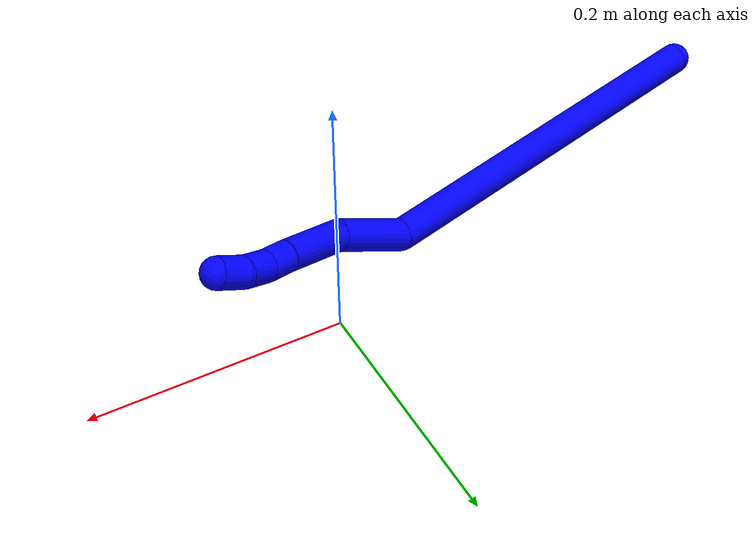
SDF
<sdf version="1.7">
 <world name="default">
  <plugin name="TubeGeneratorPlugin" filename="libtube_generator_plugin.so"/>
  <model name="photoneo_s_sensor">
   <static>1</static>
   <pose>0 0 2 1.57079 1.57079 3.14159</pose>
   <link name="link">
    <inertial><mass>0.1</mass></inertial>
    <sensor name="sensor" type="depth">
     <update_rate>30</update_rate>
     <camera>
      <horizontal_fov>1.22</horizontal_fov>
      <image><width>1920</width><height>1200</height><format>B8G8R8</format></image>
      <clip><near>0.1</near><far>4</far></clip>
      <depth_camera><output>points</output></depth_camera>
     </camera>
     <plugin name="camera_plugin" filename="libgazebo_ros_depth_camera.so">
      <baseline>0.2</baseline>
      <alwaysOn>1</alwaysOn>
      <updateRate>0.0</updateRate>
      <cameraName>camera_ir</cameraName>
      <imageTopicName>/camera/color/image_raw</imageTopicName>
      <cameraInfoTopicName>/camera/color/camera_info</cameraInfoTopicName>
      <depthImageTopicName>/camera/depth/image_raw</depthImageTopicName>
      <depthImageCameraInfoTopicName>/camera/depth/camera_info</depthImageCameraInfoTopicName>
      <pointCloudTopicName>/camera/depth/points</pointCloudTopicName>
      <frameName>fr_optical</frameName>
      <pointCloudCutoff>0.1</pointCloudCutoff>
      <pointCloudCutoffMax>2.0</pointCloudCutoffMax>
      <distortionK1>0</distortionK1>
      <distortionK2>0</distortionK2>
      <distortionK3>0</distortionK3>
      <distortionT1>0</distortionT1>
      <distortionT2>0</distortionT2>
      <CxPrime>0</CxPrime>
      <Cx>0</Cx>
      <Cy>0</Cy>
      <focalLength>0</focalLength>
      <hackBaseline>0</hackBaseline>
     </plugin>
    </sensor>
   </link>
  </model>
  <gravity>0 0 -9.8</gravity>
  <magnetic_field>6e-06 2.3e-05 -4.2e-05</magnetic_field>
  <atmosphere type="adiabatic"/>
  <physics name="default_physics" default="0" type="ode">
   <max_step_size>0.003</max_step_size>
   <real_time_factor>1</real_time_factor>
   <real_time_update_rate>1000</real_time_update_rate>
   <max_contacts>10000</max_contacts>
   <ode>
    <solver>
     <type>quick</type>
     <iters>100</iters>
     <sor>1.3</sor>
     <use_dynamic_moi_rescaling>0</use_dynamic_moi_rescaling>
    </solver>
    <constraints>
     <contact_max_correcting_vel>0</contact_max_correcting_vel>
     <contact_surface_layer>0.001</contact_surface_layer>
     <cfm>0</cfm>
     <erp>0.2</erp>
    </constraints>
   </ode>
  </physics>
  <scene><ambient>0.4 0.4 0.4 1</ambient><background>0.7 0.7 0.7 1</background><shadows>0</shadows></scene>
  <audio><device>default</device></audio>
  <spherical_coordinates>
   <surface_model>EARTH_WGS84</surface_model>
   <latitude_deg>0</latitude_deg>
   <longitude_deg>0</longitude_deg>
   <elevation>0</elevation>
   <heading_deg>0</heading_deg>
  </spherical_coordinates>
  <model name="bin">
   <static>1</static>
   <link name="bottom">
    <collision name="collision-bottom">
     <pose>0 0 -0.01 0 -0 0</pose>
     <geometry><box><size>0.8 0.6 0.02</size></box></geometry>
     <surface>
      <friction><ode><mu>100</mu><mu2>100</mu2></ode></friction>
      <contact><collide_bitmask>65535</collide_bitmask></contact>
     </surface>
    </collision>
   </link>
   <link name="west_wall">
    <collision name="collision-west_wall">
     <pose>-0.41 0 0.1 0 -0 0</pose>
     <geometry><box><size>0.02 0.6 0.2</size></box></geometry>
     <surface>
      <friction><ode><mu>100</mu><mu2>100</mu2></ode></friction>
      <contact><collide_bitmask>65535</collide_bitmask></contact>
     </surface>
    </collision>
   </link>
   <link name="east_wall">
    <collision name="collision-east_wall">
     <pose>0.41 0 0.1 0 -0 0</pose>
     <geometry><box><size>0.02 0.6 0.2</size></box></geometry>
     <surface>
      <friction><ode><mu>100</mu><mu2>100</mu2></ode></friction>
      <contact><collide_bitmask>65535</collide_bitmask></contact>
     </surface>
    </collision>
   </link>
   <link name="south_wall">
    <collision name="collision-south_wall">
     <pose>0 -0.31 0.1 0 -0 0</pose>
     <geometry><box><size>0.8 0.02 0.2</size></box></geometry>
     <surface>
      <friction><ode><mu>100</mu><mu2>100</mu2></ode></friction>
      <contact><collide_bitmask>65535</collide_bitmask></contact>
     </surface>
    </collision>
   </link>
   <link name="north_wall">
    <collision name="collision-north_wall">
     <pose>0 0.31 0.1 0 -0 0</pose>
     <geometry><box><size>0.8 0.02 0.2</size></box></geometry>
     <surface>
      <friction><ode><mu>100</mu><mu2>100</mu2></ode></friction>
      <contact><collide_bitmask>65535</collide_bitmask></contact>
     </surface>
    </collision>
   </link>
  </model>
  <model name="1">
   <static>0</static>
   <link name="1">
    <collision name="collision-cylinder-e_1_1_4">
     <pose>0.101848 0.030794 -0.119603 -2.8896 0.689594 -2.46344</pose>
     <geometry><cylinder><radius>0.0125</radius><length>0.320164</length></cylinder></geometry>
     <surface>
      <friction><ode><mu>1.16</mu><mu2>1.16</mu2><slip1>0</slip1><slip2>0</slip2></ode></friction>
      <contact><ode><kp>1e+06</kp><kd>1</kd><max_vel>0</max_vel><min_depth>0.001</min_depth></ode></contact>
     </surface>
    </collision>
    <visual name="visual-cylinder-e_1_1_4">
     <pose>0.101848 0.030794 -0.119603 -2.8896 0.689594 -2.46344</pose>
     <geometry><cylinder><radius>0.0125</radius><length>0.320164</length></cylinder></geometry>
     <material><ambient>0 0 1 1</ambient></material>
    </visual>
    <collision name="collision-cylinder-e_2_4_5">
     <pose>0.231053 0.062966 -0.250766 -3.02294 1.16847 -2.96243</pose>
     <geometry><cylinder><radius>0.0125</radius><length>0.059462</length></cylinder></geometry>
     <surface>
      <friction><ode><mu>1.16</mu><mu2>1.16</mu2><slip1>0</slip1><slip2>0</slip2></ode></friction>
      <contact><ode><kp>1e+06</kp><kd>1</kd><max_vel>0</max_vel><min_depth>0.001</min_depth></ode></contact>
     </surface>
    </collision>
    <visual name="visual-cylinder-e_2_4_5">
     <pose>0.231053 0.062966 -0.250766 -3.02294 1.16847 -2.96243</pose>
     <geometry><cylinder><radius>0.0125</radius><length>0.059462</length></cylinder></geometry>
     <material><ambient>0 0 1 1</ambient></material>
    </visual>
    <collision name="collision-cylinder-e_3_5_6">
     <pose>0.279858 0.071546 -0.277236 -2.69162 0.913362 -2.26975</pose>
     <geometry><cylinder><radius>0.0125</radius><length>0.054192</length></cylinder></geometry>
     <surface>
      <friction><ode><mu>1.16</mu><mu2>1.16</mu2><slip1>0</slip1><slip2>0</slip2></ode></friction>
      <contact><ode><kp>1e+06</kp><kd>1</kd><max_vel>0</max_vel><min_depth>0.001</min_depth></ode></contact>
     </surface>
    </collision>
    <visual name="visual-cylinder-e_3_5_6">
     <pose>0.279858 0.071546 -0.277236 -2.69162 0.913362 -2.26975</pose>
     <geometry><cylinder><radius>0.0125</radius><length>0.054192</length></cylinder></geometry>
     <material><ambient>0 0 1 1</ambient></material>
    </visual>
    <collision name="collision-cylinder-e_4_6_7">
     <pose>0.309002 0.081303 -0.298485 -2.75847 0.844564 -2.32663</pose>
     <geometry><cylinder><radius>0.0125</radius><length>0.020585</length></cylinder></geometry>
     <surface>
      <friction><ode><mu>1.16</mu><mu2>1.16</mu2><slip1>0</slip1><slip2>0</slip2></ode></friction>
      <contact><ode><kp>1e+06</kp><kd>1</kd><max_vel>0</max_vel><min_depth>0.001</min_depth></ode></contact>
     </surface>
    </collision>
    <visual name="visual-cylinder-e_4_6_7">
     <pose>0.309002 0.081303 -0.298485 -2.75847 0.844564 -2.32663</pose>
     <geometry><cylinder><radius>0.0125</radius><length>0.020585</length></cylinder></geometry>
     <material><ambient>0 0 1 1</ambient></material>
    </visual>
    <collision name="collision-cylinder-e_5_7_8">
     <pose>0.326239 0.08706 -0.309872 -2.57629 1.01113 -2.17523</pose>
     <geometry><cylinder><radius>0.0125</radius><length>0.022518</length></cylinder></geometry>
     <surface>
      <friction><ode><mu>1.16</mu><mu2>1.16</mu2><slip1>0</slip1><slip2>0</slip2></ode></friction>
      <contact><ode><kp>1e+06</kp><kd>1</kd><max_vel>0</max_vel><min_depth>0.001</min_depth></ode></contact>
     </surface>
    </collision>
    <visual name="visual-cylinder-e_5_7_8">
     <pose>0.326239 0.08706 -0.309872 -2.57629 1.01113 -2.17523</pose>
     <geometry><cylinder><radius>0.0125</radius><length>0.022518</length></cylinder></geometry>
     <material><ambient>0 0 1 1</ambient></material>
    </visual>
    <collision name="collision-cylinder-e_6_8_2">
     <pose>0.346338 0.09079 -0.319545 -3.02792 1.15545 -2.96747</pose>
     <geometry><cylinder><radius>0.0125</radius><length>0.023079</length></cylinder></geometry>
     <surface>
      <friction><ode><mu>1.16</mu><mu2>1.16</mu2><slip1>0</slip1><slip2>0</slip2></ode></friction>
      <contact><ode><kp>1e+06</kp><kd>1</kd><max_vel>0</max_vel><min_depth>0.001</min_depth></ode></contact>
     </surface>
    </collision>
    <visual name="visual-cylinder-e_6_8_2">
     <pose>0.346338 0.09079 -0.319545 -3.02792 1.15545 -2.96747</pose>
     <geometry><cylinder><radius>0.0125</radius><length>0.023079</length></cylinder></geometry>
     <material><ambient>0 0 1 1</ambient></material>
    </visual>
    <collision name="collision-sphere-2">
     <pose>0.356897 0.091318 -0.324172 0 -0 0</pose>
     <geometry><sphere><radius>0.0125</radius></sphere></geometry>
     <surface>
      <friction><ode><mu>1.16</mu><mu2>1.16</mu2><slip1>0</slip1><slip2>0</slip2></ode></friction>
      <contact><ode><kp>1e+06</kp><kd>1</kd><max_vel>0</max_vel><min_depth>0.001</min_depth></ode></contact>
     </surface>
    </collision>
    <visual name="visual-sphere-2">
     <pose>0.356897 0.091318 -0.324172 0 -0 0</pose>
     <geometry><sphere><radius>0.0125</radius></sphere></geometry>
     <material><ambient>0 0 1 1</ambient></material>
    </visual>
    <collision name="collision-sphere-4">
     <pose>0.203696 0.061588 -0.239207 0 -0 0</pose>
     <geometry><sphere><radius>0.0125</radius></sphere></geometry>
     <surface>
      <friction><ode><mu>1.16</mu><mu2>1.16</mu2><slip1>0</slip1><slip2>0</slip2></ode></friction>
      <contact><ode><kp>1e+06</kp><kd>1</kd><max_vel>0</max_vel><min_depth>0.001</min_depth></ode></contact>
     </surface>
    </collision>
    <visual name="visual-sphere-4">
     <pose>0.203696 0.061588 -0.239207 0 -0 0</pose>
     <geometry><sphere><radius>0.0125</radius></sphere></geometry>
     <material><ambient>0 0 1 1</ambient></material>
    </visual>
    <collision name="collision-sphere-1">
     <geometry><sphere><radius>0.0125</radius></sphere></geometry>
     <surface>
      <friction><ode><mu>1.16</mu><mu2>1.16</mu2><slip1>0</slip1><slip2>0</slip2></ode></friction>
      <contact><ode><kp>1e+06</kp><kd>1</kd><max_vel>0</max_vel><min_depth>0.001</min_depth></ode></contact>
     </surface>
    </collision>
    <visual name="visual-sphere-1">
     <geometry><sphere><radius>0.0125</radius></sphere></geometry>
     <material><ambient>0 0 1 1</ambient></material>
    </visual>
    <collision name="collision-sphere-8">
     <pose>0.33578 0.090262 -0.314919 0 -0 0</pose>
     <geometry><sphere><radius>0.0125</radius></sphere></geometry>
     <surface>
      <friction><ode><mu>1.16</mu><mu2>1.16</mu2><slip1>0</slip1><slip2>0</slip2></ode></friction>
      <contact><ode><kp>1e+06</kp><kd>1</kd><max_vel>0</max_vel><min_depth>0.001</min_depth></ode></contact>
     </surface>
    </collision>
    <visual name="visual-sphere-8">
     <pose>0.33578 0.090262 -0.314919 0 -0 0</pose>
     <geometry><sphere><radius>0.0125</radius></sphere></geometry>
     <material><ambient>0 0 1 1</ambient></material>
    </visual>
    <collision name="collision-sphere-5">
     <pose>0.25841 0.064344 -0.262326 0 -0 0</pose>
     <geometry><sphere><radius>0.0125</radius></sphere></geometry>
     <surface>
      <friction><ode><mu>1.16</mu><mu2>1.16</mu2><slip1>0</slip1><slip2>0</slip2></ode></friction>
      <contact><ode><kp>1e+06</kp><kd>1</kd><max_vel>0</max_vel><min_depth>0.001</min_depth></ode></contact>
     </surface>
    </collision>
    <visual name="visual-sphere-5">
     <pose>0.25841 0.064344 -0.262326 0 -0 0</pose>
     <geometry><sphere><radius>0.0125</radius></sphere></geometry>
     <material><ambient>0 0 1 1</ambient></material>
    </visual>
    <collision name="collision-sphere-6">
     <pose>0.301306 0.078748 -0.292145 0 -0 0</pose>
     <geometry><sphere><radius>0.0125</radius></sphere></geometry>
     <surface>
      <friction><ode><mu>1.16</mu><mu2>1.16</mu2><slip1>0</slip1><slip2>0</slip2></ode></friction>
      <contact><ode><kp>1e+06</kp><kd>1</kd><max_vel>0</max_vel><min_depth>0.001</min_depth></ode></contact>
     </surface>
    </collision>
    <visual name="visual-sphere-6">
     <pose>0.301306 0.078748 -0.292145 0 -0 0</pose>
     <geometry><sphere><radius>0.0125</radius></sphere></geometry>
     <material><ambient>0 0 1 1</ambient></material>
    </visual>
    <collision name="collision-sphere-7">
     <pose>0.316697 0.083858 -0.304824 0 -0 0</pose>
     <geometry><sphere><radius>0.0125</radius></sphere></geometry>
     <surface>
      <friction><ode><mu>1.16</mu><mu2>1.16</mu2><slip1>0</slip1><slip2>0</slip2></ode></friction>
      <contact><ode><kp>1e+06</kp><kd>1</kd><max_vel>0</max_vel><min_depth>0.001</min_depth></ode></contact>
     </surface>
    </collision>
    <visual name="visual-sphere-7">
     <pose>0.316697 0.083858 -0.304824 0 -0 0</pose>
     <geometry><sphere><radius>0.0125</radius></sphere></geometry>
     <material><ambient>0 0 1 1</ambient></material>
    </visual>
    <inertial>
     <pose>0.166426 0.04642 -0.177449 0 -0 0</pose>
     <mass>0.5</mass>
     <inertia>
      <ixx>-0.002978</ixx>
      <ixy>0</ixy>
      <ixz>0</ixz>
      <iyy>0.00105</iyy>
      <iyz>0</iyz>
      <izz>-0.002343</izz>
     </inertia>
    </inertial>
   </link>
   <pose>-0.388503 -0.133823 0.012577 0.252124 -0.814885 -0.1212</pose>
  </model>
 </world>
</sdf>
